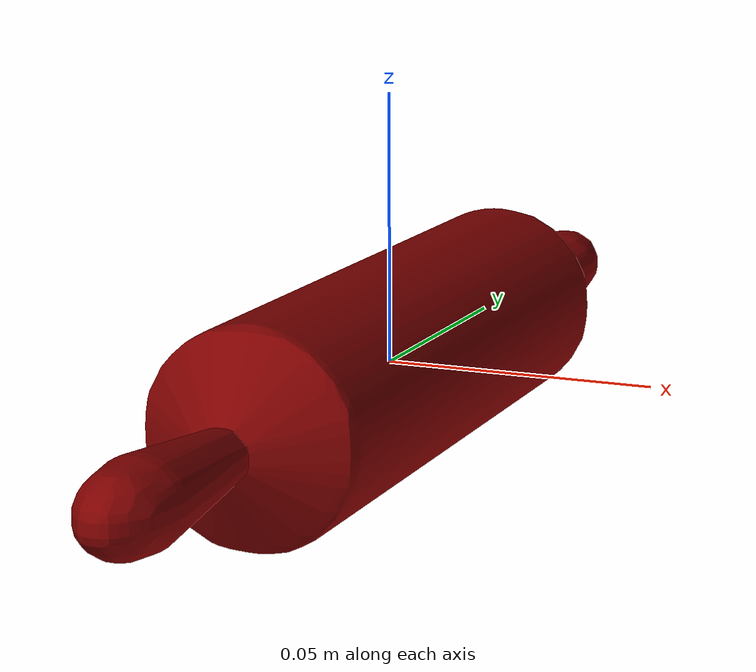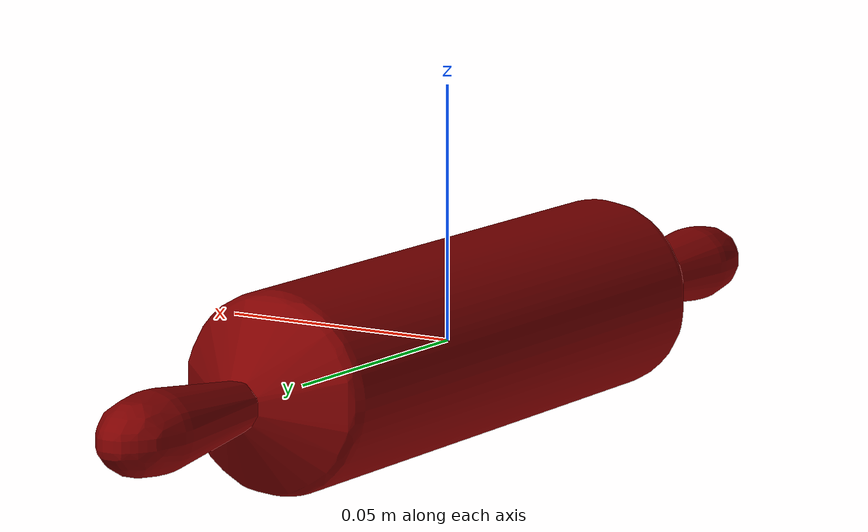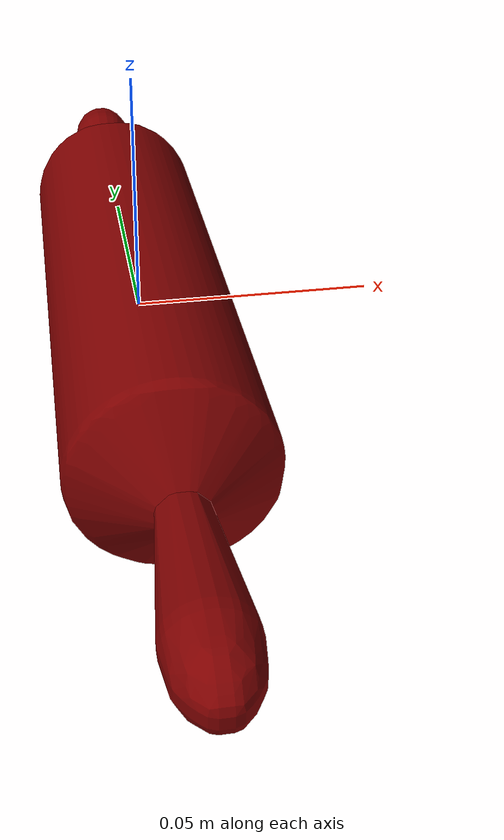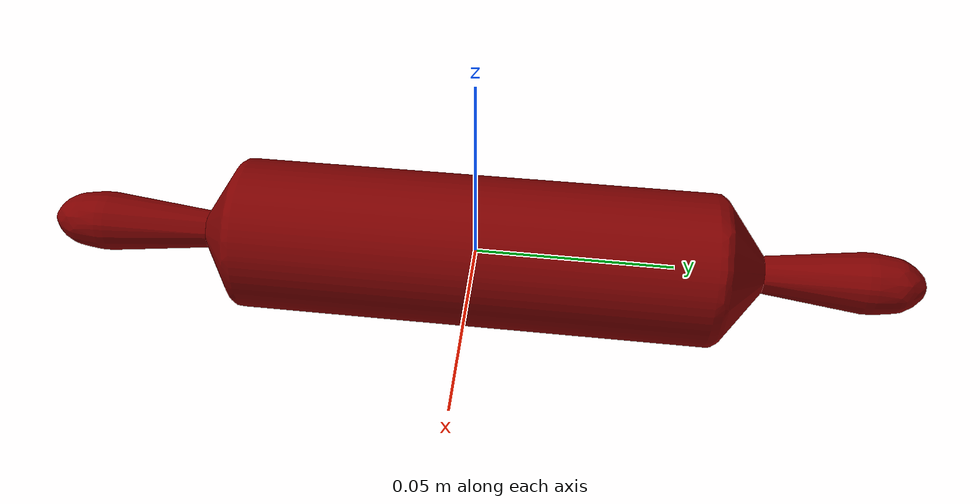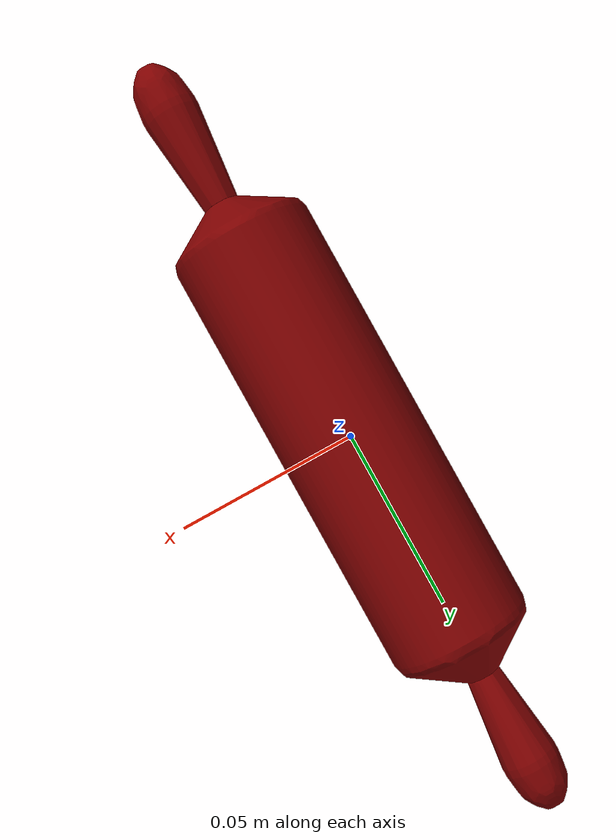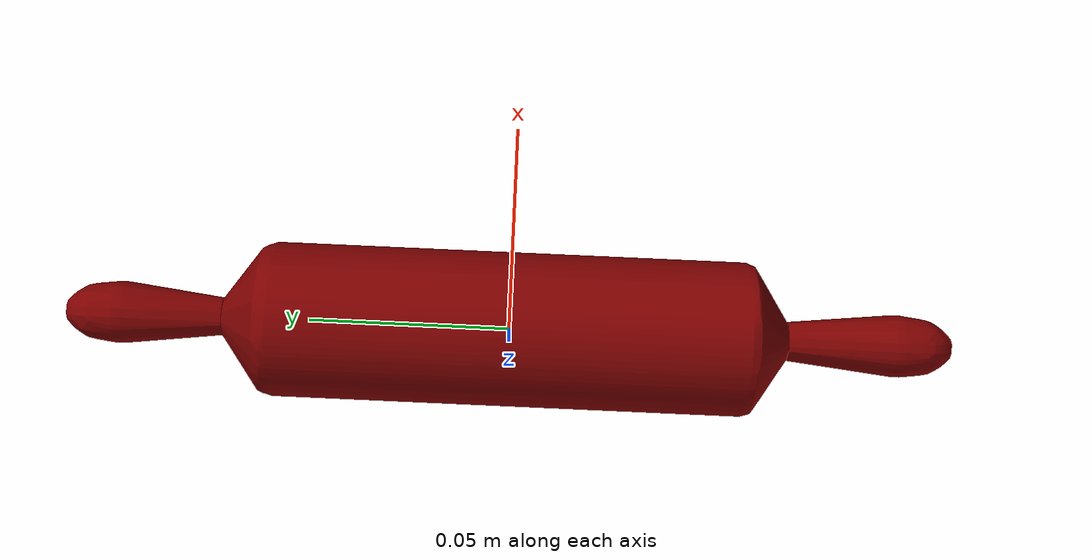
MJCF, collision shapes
<mujoco model="rolling_pin_1">
  <asset>
    <mesh file="visual/model_normalized_0.obj" name="model_normalized_0_vis" scale="0.22000000000000003 0.22000000000000003 0.22000000000000003" refquat="1.0 0.0 0.0 0.0"/>
    <texture type="2d" name="image0" file="visual/image0.png"/>
    <material name="Material.032" texture="image0" specular="0.5" shininess="0.25"/>
    <mesh file="collision/collision_mesh_collision_0.obj" name="rolling_collision_mesh_0" scale="0.22000000000000003 0.22000000000000003 0.22000000000000003" refquat="1.0 0.0 0.0 0.0"/>
    <mesh file="collision/collision_mesh_collision_1.obj" name="rolling_collision_mesh_1" scale="0.22000000000000003 0.22000000000000003 0.22000000000000003" refquat="1.0 0.0 0.0 0.0"/>
    <mesh file="collision/collision_mesh_collision_2.obj" name="rolling_collision_mesh_2" scale="0.22000000000000003 0.22000000000000003 0.22000000000000003" refquat="1.0 0.0 0.0 0.0"/>
  </asset>
  <default>
    <default class="region">
      <geom group="1" conaffinity="0" contype="0" rgba="0 1 0 0"/>
    </default>
    <default class="collision">
      <geom group="0" rgba="0.5 0 0 0.5" density="1000.0"/>
    </default>
  </default>
  <worldbody>
    <body>
      <body name="object">
        <geom solimp="0.998 0.998 0.001" solref="0.001 1" density="100" friction="0.95 0.3 0.1" type="mesh" mesh="model_normalized_0_vis" conaffinity="0" contype="0" group="1" material="Material.032"/>
        <geom class="region" name="reg_bbox" type="box" pos="0.0 -1.3904000000009022e-06 1.3200000000684888e-08" size="0.019244918000000003 0.11074863580000002 0.0192449422"/>
        <geom mesh="rolling_collision_mesh_0" type="mesh" class="collision"/>
        <geom mesh="rolling_collision_mesh_1" type="mesh" class="collision"/>
        <geom mesh="rolling_collision_mesh_2" type="mesh" class="collision"/>
      </body>
    </body>
  </worldbody>
</mujoco>
